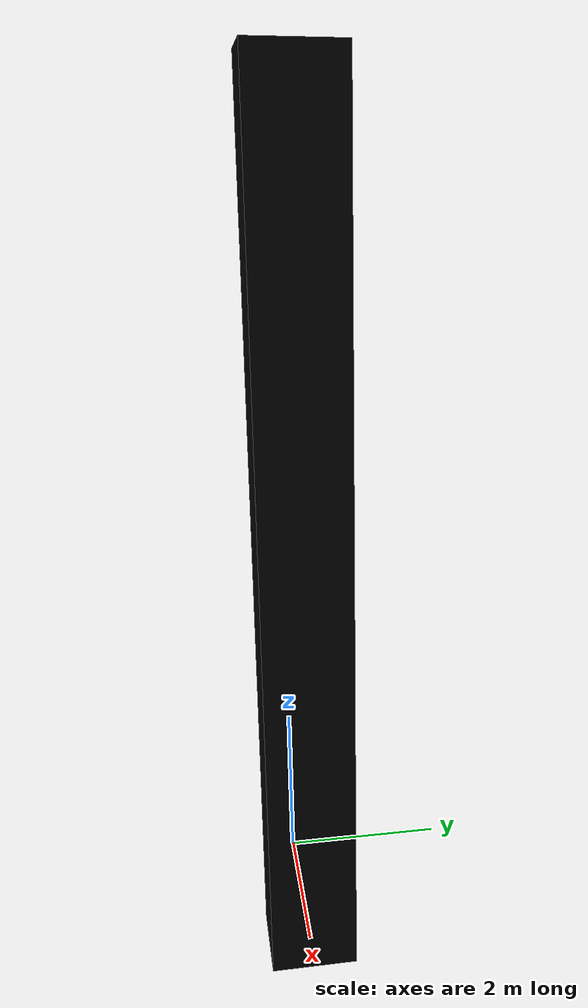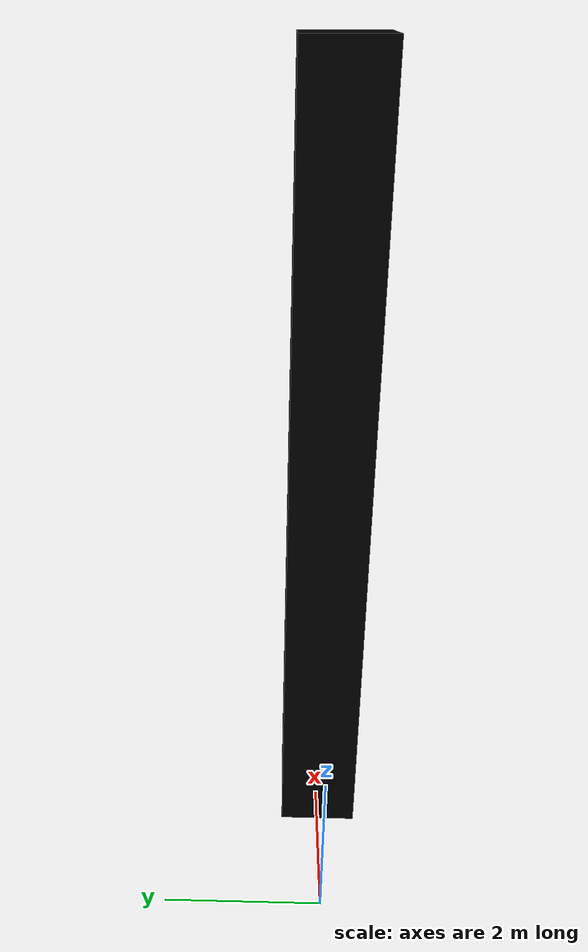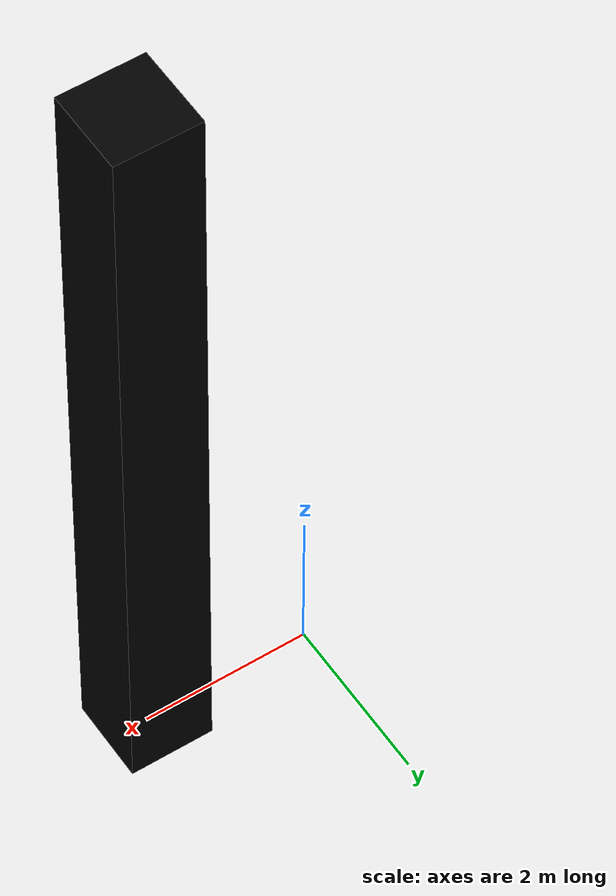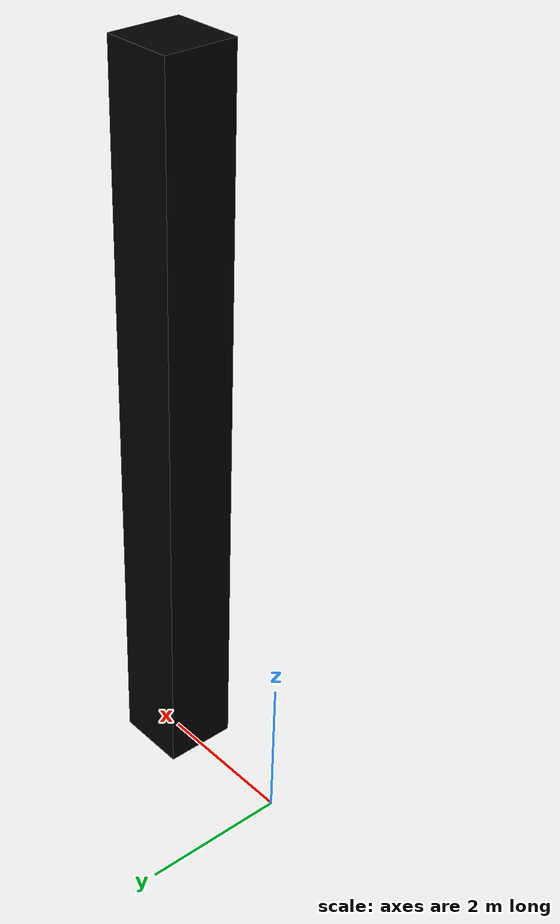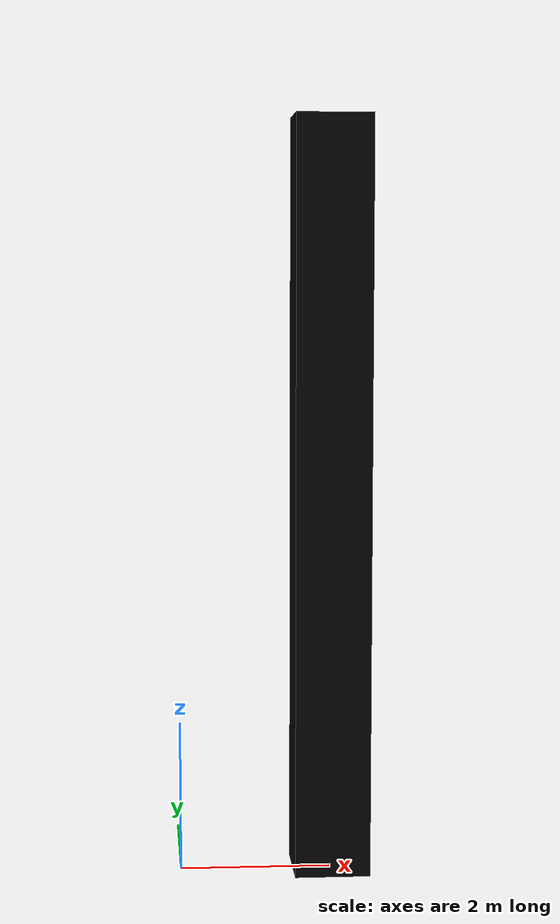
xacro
<?xml version="1.0"?>
<robot
     xmlns:xacro="http://www.ros.org/wiki/xacro" name="wall">

<link name="world"/>

<link name="wall">
  <visual>
   <origin xyz="0 0 5" rpy="0 0 0"/>
   <geometry>
      <box size="1 1 10"/>
   </geometry>
   <material name="black">
     <color rgba="0 0 0 100"/>
   </material>
  </visual>
 <collision>
   <origin xyz="0 0 5" rpy="0 0 0"/>
   <geometry>
      <box size="1 1 10"/>
   </geometry>
    </collision>
<inertial>
      <origin xyz="0 0 5" rpy="0 0 0"/>
      <mass value="1000"/>
      <inertia
        ixx="0" ixy="0.0" ixz="0.0"
        iyy="0" iyz="0.0"
        izz="0"/>
    </inertial>
</link>

<joint name="wall_joint" type="fixed">
  <parent link="world"/>
  <child link="wall"/>
  <origin xyz="2 0.0 0" rpy="0.0 0.0 0.0" />
</joint>

  <gazebo reference="wall">
    <material>Gazebo/White</material>
    <mu1 value="1000000"/>
    <mu2 value="1000000"/>
  </gazebo>

</robot>
